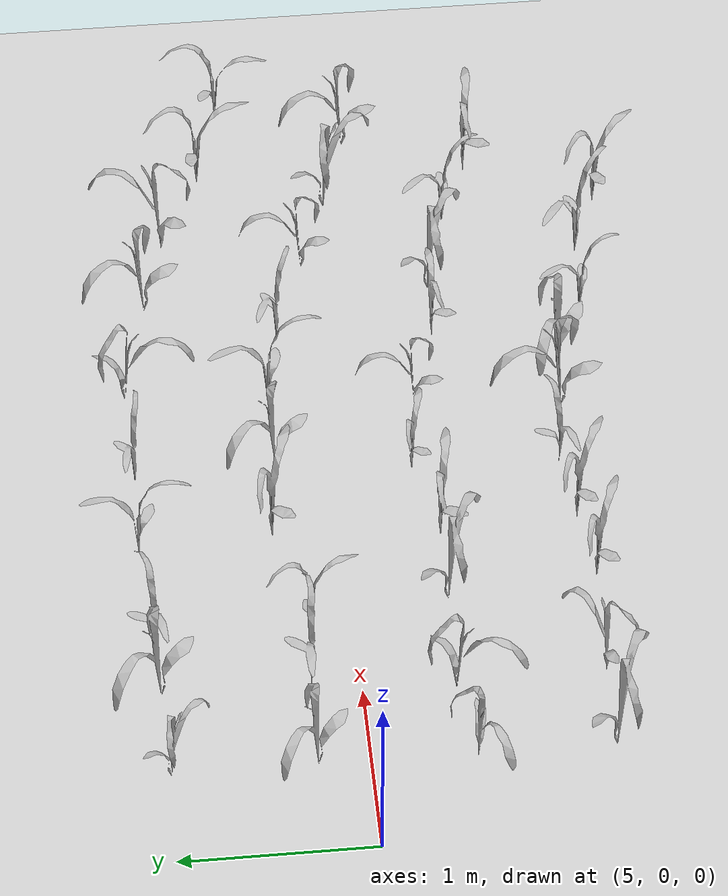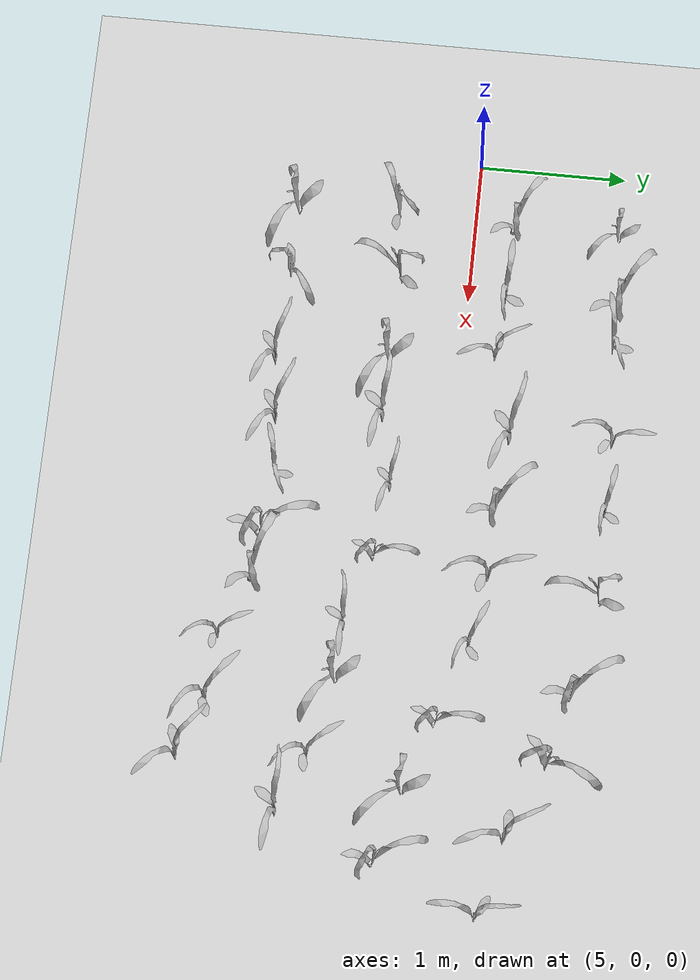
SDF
<sdf version="1.6">
 <world name="default">
  <model name="ground_plane">
   <static>1</static>
   <link name="link">
    <collision name="collision">
     <geometry><plane><normal>0 0 1</normal><size>100 100</size></plane></geometry>
     <surface>
      <contact><collide_bitmask>65535</collide_bitmask></contact>
      <friction><ode><mu>100</mu><mu2>50</mu2></ode></friction>
     </surface>
    </collision>
    <visual name="visual">
     <cast_shadows>0</cast_shadows>
     <geometry><plane><normal>0 0 1</normal><size>100 100</size></plane></geometry>
     <material>
      <script><uri>file://media/materials/scripts/gazebo.material</uri><name>Gazebo/Grey</name></script>
     </material>
    </visual>
   </link>
  </model>
  <model name="maize_01_0040">
   <pose>5.506786994470189 0.2656293258427953 0.05 0 -0 3.3924186708575643</pose>
   <link name="maize_01_0040_link">
    <inertial>
     <mass>5.0</mass>
     <inertia>
      <ixx>0.0033416667</ixx>
      <ixy>0</ixy>
      <ixz>0</ixz>
      <iyy>0.0033416667</iyy>
      <iyz>0</iyz>
      <izz>0.000016666667</izz>
     </inertia>
     <pose>0 0 0.1 0 0 0</pose>
    </inertial>
    <collision name="collision">
     <pose>0 0 0.2 0 -0 0</pose>
     <geometry><box><size>0.02 0.02 0.4</size></box></geometry>
     <surface><friction><ode><mu>10</mu><mu2>10</mu2></ode></friction></surface>
    </collision>
    <visual name="visual">
     <geometry>
      <mesh>
       <uri>model://maize_01/meshes/maize_01.dae</uri>
       <scale>0.6189998295043194 0.6189998295043194 0.6189998295043194</scale>
      </mesh>
     </geometry>
    </visual>
   </link>
  </model>
  <model name="maize_01_0041">
   <pose>5.498270994802505 0.9851649610068504 0.05 0 -0 0.06025964583949141</pose>
   <link name="maize_01_0041_link">
    <inertial>
     <mass>5.0</mass>
     <inertia>
      <ixx>0.0033416667</ixx>
      <ixy>0</ixy>
      <ixz>0</ixz>
      <iyy>0.0033416667</iyy>
      <iyz>0</iyz>
      <izz>0.000016666667</izz>
     </inertia>
     <pose>0 0 0.1 0 0 0</pose>
    </inertial>
    <collision name="collision">
     <pose>0 0 0.2 0 -0 0</pose>
     <geometry><box><size>0.02 0.02 0.4</size></box></geometry>
     <surface><friction><ode><mu>10</mu><mu2>10</mu2></ode></friction></surface>
    </collision>
    <visual name="visual">
     <geometry>
      <mesh>
       <uri>model://maize_01/meshes/maize_01.dae</uri>
       <scale>0.5000915318955779 0.5000915318955779 0.5000915318955779</scale>
      </mesh>
     </geometry>
    </visual>
   </link>
  </model>
  <model name="maize_01_0042">
   <pose>5.479430346156631 -0.5195344718169158 0.05 0 -0 4.317994222408603</pose>
   <link name="maize_01_0042_link">
    <inertial>
     <mass>5.0</mass>
     <inertia>
      <ixx>0.0033416667</ixx>
      <ixy>0</ixy>
      <ixz>0</ixz>
      <iyy>0.0033416667</iyy>
      <iyz>0</iyz>
      <izz>0.000016666667</izz>
     </inertia>
     <pose>0 0 0.1 0 0 0</pose>
    </inertial>
    <collision name="collision">
     <pose>0 0 0.2 0 -0 0</pose>
     <geometry><box><size>0.02 0.02 0.4</size></box></geometry>
     <surface><friction><ode><mu>10</mu><mu2>10</mu2></ode></friction></surface>
    </collision>
    <visual name="visual">
     <geometry>
      <mesh>
       <uri>model://maize_01/meshes/maize_01.dae</uri>
       <scale>0.5534661989044314 0.5534661989044314 0.5534661989044314</scale>
      </mesh>
     </geometry>
    </visual>
   </link>
  </model>
  <model name="maize_01_0043">
   <pose>5.494622844473126 -1.2155527549326124 0.05 0 -0 0.37965837072912256</pose>
   <link name="maize_01_0043_link">
    <inertial>
     <mass>5.0</mass>
     <inertia>
      <ixx>0.0033416667</ixx>
      <ixy>0</ixy>
      <ixz>0</ixz>
      <iyy>0.0033416667</iyy>
      <iyz>0</iyz>
      <izz>0.000016666667</izz>
     </inertia>
     <pose>0 0 0.1 0 0 0</pose>
    </inertial>
    <collision name="collision">
     <pose>0 0 0.2 0 -0 0</pose>
     <geometry><box><size>0.02 0.02 0.4</size></box></geometry>
     <surface><friction><ode><mu>10</mu><mu2>10</mu2></ode></friction></surface>
    </collision>
    <visual name="visual">
     <geometry>
      <mesh>
       <uri>model://maize_01/meshes/maize_01.dae</uri>
       <scale>0.6962699826558162 0.6962699826558162 0.6962699826558162</scale>
      </mesh>
     </geometry>
    </visual>
   </link>
  </model>
  <model name="maize_02_0044">
   <pose>6.02254541849747 0.2537100269036799 0.05 0 -0 5.268390102434163</pose>
   <link name="maize_02_0044_link">
    <inertial>
     <mass>5.0</mass>
     <inertia>
      <ixx>0.0033416667</ixx>
      <ixy>0</ixy>
      <ixz>0</ixz>
      <iyy>0.0033416667</iyy>
      <iyz>0</iyz>
      <izz>0.000016666667</izz>
     </inertia>
     <pose>0 0 0.1 0 0 0</pose>
    </inertial>
    <collision name="collision">
     <pose>0 0 0.2 0 -0 0</pose>
     <geometry><box><size>0.02 0.02 0.4</size></box></geometry>
     <surface><friction><ode><mu>10</mu><mu2>10</mu2></ode></friction></surface>
    </collision>
    <visual name="visual">
     <geometry>
      <mesh>
       <uri>model://maize_02/meshes/maize_02.dae</uri>
       <scale>0.6088828733099652 0.6088828733099652 0.6088828733099652</scale>
      </mesh>
     </geometry>
    </visual>
   </link>
  </model>
  <model name="maize_01_0045">
   <pose>6.021867439145475 1.0064633467937198 0.05 0 -0 3.332251710796354</pose>
   <link name="maize_01_0045_link">
    <inertial>
     <mass>5.0</mass>
     <inertia>
      <ixx>0.0033416667</ixx>
      <ixy>0</ixy>
      <ixz>0</ixz>
      <iyy>0.0033416667</iyy>
      <iyz>0</iyz>
      <izz>0.000016666667</izz>
     </inertia>
     <pose>0 0 0.1 0 0 0</pose>
    </inertial>
    <collision name="collision">
     <pose>0 0 0.2 0 -0 0</pose>
     <geometry><box><size>0.02 0.02 0.4</size></box></geometry>
     <surface><friction><ode><mu>10</mu><mu2>10</mu2></ode></friction></surface>
    </collision>
    <visual name="visual">
     <geometry>
      <mesh>
       <uri>model://maize_01/meshes/maize_01.dae</uri>
       <scale>0.6867273413716238 0.6867273413716238 0.6867273413716238</scale>
      </mesh>
     </geometry>
    </visual>
   </link>
  </model>
  <model name="maize_01_0046">
   <pose>5.932401994137389 -0.46470037149348664 0.05 0 -0 5.085144024606066</pose>
   <link name="maize_01_0046_link">
    <inertial>
     <mass>5.0</mass>
     <inertia>
      <ixx>0.0033416667</ixx>
      <ixy>0</ixy>
      <ixz>0</ixz>
      <iyy>0.0033416667</iyy>
      <iyz>0</iyz>
      <izz>0.000016666667</izz>
     </inertia>
     <pose>0 0 0.1 0 0 0</pose>
    </inertial>
    <collision name="collision">
     <pose>0 0 0.2 0 -0 0</pose>
     <geometry><box><size>0.02 0.02 0.4</size></box></geometry>
     <surface><friction><ode><mu>10</mu><mu2>10</mu2></ode></friction></surface>
    </collision>
    <visual name="visual">
     <geometry>
      <mesh>
       <uri>model://maize_01/meshes/maize_01.dae</uri>
       <scale>0.5899681368352446 0.5899681368352446 0.5899681368352446</scale>
      </mesh>
     </geometry>
    </visual>
   </link>
  </model>
  <model name="maize_01_0047">
   <pose>5.974389578275147 -1.2238915524115812 0.05 0 -0 1.3758996563627348</pose>
   <link name="maize_01_0047_link">
    <inertial>
     <mass>5.0</mass>
     <inertia>
      <ixx>0.0033416667</ixx>
      <ixy>0</ixy>
      <ixz>0</ixz>
      <iyy>0.0033416667</iyy>
      <iyz>0</iyz>
      <izz>0.000016666667</izz>
     </inertia>
     <pose>0 0 0.1 0 0 0</pose>
    </inertial>
    <collision name="collision">
     <pose>0 0 0.2 0 -0 0</pose>
     <geometry><box><size>0.02 0.02 0.4</size></box></geometry>
     <surface><friction><ode><mu>10</mu><mu2>10</mu2></ode></friction></surface>
    </collision>
    <visual name="visual">
     <geometry>
      <mesh>
       <uri>model://maize_01/meshes/maize_01.dae</uri>
       <scale>0.5517075941704092 0.5517075941704092 0.5517075941704092</scale>
      </mesh>
     </geometry>
    </visual>
   </link>
  </model>
  <model name="maize_02_0048">
   <pose>6.444683934957754 0.21806997869283193 0.05 0 -0 1.0231611283328046</pose>
   <link name="maize_02_0048_link">
    <inertial>
     <mass>5.0</mass>
     <inertia>
      <ixx>0.0033416667</ixx>
      <ixy>0</ixy>
      <ixz>0</ixz>
      <iyy>0.0033416667</iyy>
      <iyz>0</iyz>
      <izz>0.000016666667</izz>
     </inertia>
     <pose>0 0 0.1 0 0 0</pose>
    </inertial>
    <collision name="collision">
     <pose>0 0 0.2 0 -0 0</pose>
     <geometry><box><size>0.02 0.02 0.4</size></box></geometry>
     <surface><friction><ode><mu>10</mu><mu2>10</mu2></ode></friction></surface>
    </collision>
    <visual name="visual">
     <geometry>
      <mesh>
       <uri>model://maize_02/meshes/maize_02.dae</uri>
       <scale>0.5222971193343772 0.5222971193343772 0.5222971193343772</scale>
      </mesh>
     </geometry>
    </visual>
   </link>
  </model>
  <model name="maize_02_0049">
   <pose>6.311951254254064 1.011576644294995 0.05 0 -0 5.504198045658767</pose>
   <link name="maize_02_0049_link">
    <inertial>
     <mass>5.0</mass>
     <inertia>
      <ixx>0.0033416667</ixx>
      <ixy>0</ixy>
      <ixz>0</ixz>
      <iyy>0.0033416667</iyy>
      <iyz>0</iyz>
      <izz>0.000016666667</izz>
     </inertia>
     <pose>0 0 0.1 0 0 0</pose>
    </inertial>
    <collision name="collision">
     <pose>0 0 0.2 0 -0 0</pose>
     <geometry><box><size>0.02 0.02 0.4</size></box></geometry>
     <surface><friction><ode><mu>10</mu><mu2>10</mu2></ode></friction></surface>
    </collision>
    <visual name="visual">
     <geometry>
      <mesh>
       <uri>model://maize_02/meshes/maize_02.dae</uri>
       <scale>0.5701051856462379 0.5701051856462379 0.5701051856462379</scale>
      </mesh>
     </geometry>
    </visual>
   </link>
  </model>
  <model name="maize_01_0050">
   <pose>6.53616275845879 -0.49190842154945386 0.05 0 -0 0.33308074377836916</pose>
   <link name="maize_01_0050_link">
    <inertial>
     <mass>5.0</mass>
     <inertia>
      <ixx>0.0033416667</ixx>
      <ixy>0</ixy>
      <ixz>0</ixz>
      <iyy>0.0033416667</iyy>
      <iyz>0</iyz>
      <izz>0.000016666667</izz>
     </inertia>
     <pose>0 0 0.1 0 0 0</pose>
    </inertial>
    <collision name="collision">
     <pose>0 0 0.2 0 -0 0</pose>
     <geometry><box><size>0.02 0.02 0.4</size></box></geometry>
     <surface><friction><ode><mu>10</mu><mu2>10</mu2></ode></friction></surface>
    </collision>
    <visual name="visual">
     <geometry>
      <mesh>
       <uri>model://maize_01/meshes/maize_01.dae</uri>
       <scale>0.6685947104741558 0.6685947104741558 0.6685947104741558</scale>
      </mesh>
     </geometry>
    </visual>
   </link>
  </model>
  <model name="maize_02_0051">
   <pose>6.611361487242681 -1.2605063685053592 0.05 0 -0 1.7884036289483325</pose>
   <link name="maize_02_0051_link">
    <inertial>
     <mass>5.0</mass>
     <inertia>
      <ixx>0.0033416667</ixx>
      <ixy>0</ixy>
      <ixz>0</ixz>
      <iyy>0.0033416667</iyy>
      <iyz>0</iyz>
      <izz>0.000016666667</izz>
     </inertia>
     <pose>0 0 0.1 0 0 0</pose>
    </inertial>
    <collision name="collision">
     <pose>0 0 0.2 0 -0 0</pose>
     <geometry><box><size>0.02 0.02 0.4</size></box></geometry>
     <surface><friction><ode><mu>10</mu><mu2>10</mu2></ode></friction></surface>
    </collision>
    <visual name="visual">
     <geometry>
      <mesh>
       <uri>model://maize_02/meshes/maize_02.dae</uri>
       <scale>0.6225692680401886 0.6225692680401886 0.6225692680401886</scale>
      </mesh>
     </geometry>
    </visual>
   </link>
  </model>
  <model name="maize_02_0052">
   <pose>7.047655717057351 0.3668921904029307 0.05 0 -0 1.865239226065937</pose>
   <link name="maize_02_0052_link">
    <inertial>
     <mass>5.0</mass>
     <inertia>
      <ixx>0.0033416667</ixx>
      <ixy>0</ixy>
      <ixz>0</ixz>
      <iyy>0.0033416667</iyy>
      <iyz>0</iyz>
      <izz>0.000016666667</izz>
     </inertia>
     <pose>0 0 0.1 0 0 0</pose>
    </inertial>
    <collision name="collision">
     <pose>0 0 0.2 0 -0 0</pose>
     <geometry><box><size>0.02 0.02 0.4</size></box></geometry>
     <surface><friction><ode><mu>10</mu><mu2>10</mu2></ode></friction></surface>
    </collision>
    <visual name="visual">
     <geometry>
      <mesh>
       <uri>model://maize_02/meshes/maize_02.dae</uri>
       <scale>0.6868021087822107 0.6868021087822107 0.6868021087822107</scale>
      </mesh>
     </geometry>
    </visual>
   </link>
  </model>
  <model name="maize_02_0053">
   <pose>7.002225742621037 1.0586696913169389 0.05 0 -0 3.749618994481808</pose>
   <link name="maize_02_0053_link">
    <inertial>
     <mass>5.0</mass>
     <inertia>
      <ixx>0.0033416667</ixx>
      <ixy>0</ixy>
      <ixz>0</ixz>
      <iyy>0.0033416667</iyy>
      <iyz>0</iyz>
      <izz>0.000016666667</izz>
     </inertia>
     <pose>0 0 0.1 0 0 0</pose>
    </inertial>
    <collision name="collision">
     <pose>0 0 0.2 0 -0 0</pose>
     <geometry><box><size>0.02 0.02 0.4</size></box></geometry>
     <surface><friction><ode><mu>10</mu><mu2>10</mu2></ode></friction></surface>
    </collision>
    <visual name="visual">
     <geometry>
      <mesh>
       <uri>model://maize_02/meshes/maize_02.dae</uri>
       <scale>0.5549107990418974 0.5549107990418974 0.5549107990418974</scale>
      </mesh>
     </geometry>
    </visual>
   </link>
  </model>
  <model name="maize_02_0054">
   <pose>6.964805699102833 -0.4964306345051091 0.05 0 -0 2.0242427335745856</pose>
   <link name="maize_02_0054_link">
    <inertial>
     <mass>5.0</mass>
     <inertia>
      <ixx>0.0033416667</ixx>
      <ixy>0</ixy>
      <ixz>0</ixz>
      <iyy>0.0033416667</iyy>
      <iyz>0</iyz>
      <izz>0.000016666667</izz>
     </inertia>
     <pose>0 0 0.1 0 0 0</pose>
    </inertial>
    <collision name="collision">
     <pose>0 0 0.2 0 -0 0</pose>
     <geometry><box><size>0.02 0.02 0.4</size></box></geometry>
     <surface><friction><ode><mu>10</mu><mu2>10</mu2></ode></friction></surface>
    </collision>
    <visual name="visual">
     <geometry>
      <mesh>
       <uri>model://maize_02/meshes/maize_02.dae</uri>
       <scale>0.6621043652803483 0.6621043652803483 0.6621043652803483</scale>
      </mesh>
     </geometry>
    </visual>
   </link>
  </model>
  <model name="maize_02_0055">
   <pose>7.040403497226146 -1.2146936146891378 0.05 0 -0 1.7073671391820333</pose>
   <link name="maize_02_0055_link">
    <inertial>
     <mass>5.0</mass>
     <inertia>
      <ixx>0.0033416667</ixx>
      <ixy>0</ixy>
      <ixz>0</ixz>
      <iyy>0.0033416667</iyy>
      <iyz>0</iyz>
      <izz>0.000016666667</izz>
     </inertia>
     <pose>0 0 0.1 0 0 0</pose>
    </inertial>
    <collision name="collision">
     <pose>0 0 0.2 0 -0 0</pose>
     <geometry><box><size>0.02 0.02 0.4</size></box></geometry>
     <surface><friction><ode><mu>10</mu><mu2>10</mu2></ode></friction></surface>
    </collision>
    <visual name="visual">
     <geometry>
      <mesh>
       <uri>model://maize_02/meshes/maize_02.dae</uri>
       <scale>0.6301210235145418 0.6301210235145418 0.6301210235145418</scale>
      </mesh>
     </geometry>
    </visual>
   </link>
  </model>
  <model name="maize_01_0056">
   <pose>7.564689000184168 0.31163713333273607 0.05 0 -0 3.188919088596986</pose>
   <link name="maize_01_0056_link">
    <inertial>
     <mass>5.0</mass>
     <inertia>
      <ixx>0.0033416667</ixx>
      <ixy>0</ixy>
      <ixz>0</ixz>
      <iyy>0.0033416667</iyy>
      <iyz>0</iyz>
      <izz>0.000016666667</izz>
     </inertia>
     <pose>0 0 0.1 0 0 0</pose>
    </inertial>
    <collision name="collision">
     <pose>0 0 0.2 0 -0 0</pose>
     <geometry><box><size>0.02 0.02 0.4</size></box></geometry>
     <surface><friction><ode><mu>10</mu><mu2>10</mu2></ode></friction></surface>
    </collision>
    <visual name="visual">
     <geometry>
      <mesh>
       <uri>model://maize_01/meshes/maize_01.dae</uri>
       <scale>0.6456038164937912 0.6456038164937912 0.6456038164937912</scale>
      </mesh>
     </geometry>
    </visual>
   </link>
  </model>
  <model name="maize_02_0057">
   <pose>7.500975361317406 1.0499312067313706 0.05 0 -0 5.141058910653974</pose>
   <link name="maize_02_0057_link">
    <inertial>
     <mass>5.0</mass>
     <inertia>
      <ixx>0.0033416667</ixx>
      <ixy>0</ixy>
      <ixz>0</ixz>
      <iyy>0.0033416667</iyy>
      <iyz>0</iyz>
      <izz>0.000016666667</izz>
     </inertia>
     <pose>0 0 0.1 0 0 0</pose>
    </inertial>
    <collision name="collision">
     <pose>0 0 0.2 0 -0 0</pose>
     <geometry><box><size>0.02 0.02 0.4</size></box></geometry>
     <surface><friction><ode><mu>10</mu><mu2>10</mu2></ode></friction></surface>
    </collision>
    <visual name="visual">
     <geometry>
      <mesh>
       <uri>model://maize_02/meshes/maize_02.dae</uri>
       <scale>0.5251215965367916 0.5251215965367916 0.5251215965367916</scale>
      </mesh>
     </geometry>
    </visual>
   </link>
  </model>
  <model name="maize_02_0058">
   <pose>7.455712312881643 -0.3977243474003614 0.05 0 -0 1.9446974029243165</pose>
   <link name="maize_02_0058_link">
    <inertial>
     <mass>5.0</mass>
     <inertia>
      <ixx>0.0033416667</ixx>
      <ixy>0</ixy>
      <ixz>0</ixz>
      <iyy>0.0033416667</iyy>
      <iyz>0</iyz>
      <izz>0.000016666667</izz>
     </inertia>
     <pose>0 0 0.1 0 0 0</pose>
    </inertial>
    <collision name="collision">
     <pose>0 0 0.2 0 -0 0</pose>
     <geometry><box><size>0.02 0.02 0.4</size></box></geometry>
     <surface><friction><ode><mu>10</mu><mu2>10</mu2></ode></friction></surface>
    </collision>
    <visual name="visual">
     <geometry>
      <mesh>
       <uri>model://maize_02/meshes/maize_02.dae</uri>
       <scale>0.5105369562286869 0.5105369562286869 0.5105369562286869</scale>
      </mesh>
     </geometry>
    </visual>
   </link>
  </model>
  <model name="maize_02_0059">
   <pose>7.426569444041071 -1.168700941892246 0.05 0 -0 5.573964091727801</pose>
   <link name="maize_02_0059_link">
    <inertial>
     <mass>5.0</mass>
     <inertia>
      <ixx>0.0033416667</ixx>
      <ixy>0</ixy>
      <ixz>0</ixz>
      <iyy>0.0033416667</iyy>
      <iyz>0</iyz>
      <izz>0.000016666667</izz>
     </inertia>
     <pose>0 0 0.1 0 0 0</pose>
    </inertial>
    <collision name="collision">
     <pose>0 0 0.2 0 -0 0</pose>
     <geometry><box><size>0.02 0.02 0.4</size></box></geometry>
     <surface><friction><ode><mu>10</mu><mu2>10</mu2></ode></friction></surface>
    </collision>
    <visual name="visual">
     <geometry>
      <mesh>
       <uri>model://maize_02/meshes/maize_02.dae</uri>
       <scale>0.5241416613408271 0.5241416613408271 0.5241416613408271</scale>
      </mesh>
     </geometry>
    </visual>
   </link>
  </model>
  <model name="maize_02_0060">
   <pose>8.024216891501732 0.3117248870357677 0.05 0 -0 4.009393099995125</pose>
   <link name="maize_02_0060_link">
    <inertial>
     <mass>5.0</mass>
     <inertia>
      <ixx>0.0033416667</ixx>
      <ixy>0</ixy>
      <ixz>0</ixz>
      <iyy>0.0033416667</iyy>
      <iyz>0</iyz>
      <izz>0.000016666667</izz>
     </inertia>
     <pose>0 0 0.1 0 0 0</pose>
    </inertial>
    <collision name="collision">
     <pose>0 0 0.2 0 -0 0</pose>
     <geometry><box><size>0.02 0.02 0.4</size></box></geometry>
     <surface><friction><ode><mu>10</mu><mu2>10</mu2></ode></friction></surface>
    </collision>
    <visual name="visual">
     <geometry>
      <mesh>
       <uri>model://maize_02/meshes/maize_02.dae</uri>
       <scale>0.619068009571125 0.619068009571125 0.619068009571125</scale>
      </mesh>
     </geometry>
    </visual>
   </link>
  </model>
  <model name="maize_01_0061">
   <pose>8.114442692044541 1.066516804768334 0.05 0 -0 5.434871950774438</pose>
   <link name="maize_01_0061_link">
    <inertial>
     <mass>5.0</mass>
     <inertia>
      <ixx>0.0033416667</ixx>
      <ixy>0</ixy>
      <ixz>0</ixz>
      <iyy>0.0033416667</iyy>
      <iyz>0</iyz>
      <izz>0.000016666667</izz>
     </inertia>
     <pose>0 0 0.1 0 0 0</pose>
    </inertial>
    <collision name="collision">
     <pose>0 0 0.2 0 -0 0</pose>
     <geometry><box><size>0.02 0.02 0.4</size></box></geometry>
     <surface><friction><ode><mu>10</mu><mu2>10</mu2></ode></friction></surface>
    </collision>
    <visual name="visual">
     <geometry>
      <mesh>
       <uri>model://maize_01/meshes/maize_01.dae</uri>
       <scale>0.6098479446709089 0.6098479446709089 0.6098479446709089</scale>
      </mesh>
     </geometry>
    </visual>
   </link>
  </model>
  <model name="maize_01_0062">
   <pose>7.9526681246436945 -0.4627865803892593 0.05 0 -0 2.3683497602784884</pose>
   <link name="maize_01_0062_link">
    <inertial>
     <mass>5.0</mass>
     <inertia>
      <ixx>0.0033416667</ixx>
      <ixy>0</ixy>
      <ixz>0</ixz>
      <iyy>0.0033416667</iyy>
      <iyz>0</iyz>
      <izz>0.000016666667</izz>
     </inertia>
     <pose>0 0 0.1 0 0 0</pose>
    </inertial>
    <collision name="collision">
     <pose>0 0 0.2 0 -0 0</pose>
     <geometry><box><size>0.02 0.02 0.4</size></box></geometry>
     <surface><friction><ode><mu>10</mu><mu2>10</mu2></ode></friction></surface>
    </collision>
    <visual name="visual">
     <geometry>
      <mesh>
       <uri>model://maize_01/meshes/maize_01.dae</uri>
       <scale>0.5153146976363424 0.5153146976363424 0.5153146976363424</scale>
      </mesh>
     </geometry>
    </visual>
   </link>
  </model>
  <model name="maize_01_0063">
   <pose>7.864211292835685 -1.234221053422453 0.05 0 -0 2.7041383097239122</pose>
   <link name="maize_01_0063_link">
    <inertial>
     <mass>5.0</mass>
     <inertia>
      <ixx>0.0033416667</ixx>
      <ixy>0</ixy>
      <ixz>0</ixz>
      <iyy>0.0033416667</iyy>
      <iyz>0</iyz>
      <izz>0.000016666667</izz>
     </inertia>
     <pose>0 0 0.1 0 0 0</pose>
    </inertial>
    <collision name="collision">
     <pose>0 0 0.2 0 -0 0</pose>
     <geometry><box><size>0.02 0.02 0.4</size></box></geometry>
     <surface><friction><ode><mu>10</mu><mu2>10</mu2></ode></friction></surface>
    </collision>
    <visual name="visual">
     <geometry>
      <mesh>
       <uri>model://maize_01/meshes/maize_01.dae</uri>
       <scale>0.6941420537995995 0.6941420537995995 0.6941420537995995</scale>
      </mesh>
     </geometry>
    </visual>
   </link>
  </model>
  <model name="maize_02_0064">
   <pose>8.515626580710169 0.22752573464025544 0.05 0 -0 4.894806823461959</pose>
   <link name="maize_02_0064_link">
    <inertial>
     <mass>5.0</mass>
     <inertia>
      <ixx>0.0033416667</ixx>
      <ixy>0</ixy>
      <ixz>0</ixz>
      <iyy>0.0033416667</iyy>
      <iyz>0</iyz>
      <izz>0.000016666667</izz>
     </inertia>
     <pose>0 0 0.1 0 0 0</pose>
    </inertial>
    <collision name="collision">
     <pose>0 0 0.2 0 -0 0</pose>
     <geometry><box><size>0.02 0.02 0.4</size></box></geometry>
     <surface><friction><ode><mu>10</mu><mu2>10</mu2></ode></friction></surface>
    </collision>
    <visual name="visual">
     <geometry>
      <mesh>
       <uri>model://maize_02/meshes/maize_02.dae</uri>
       <scale>0.5342948187897263 0.5342948187897263 0.5342948187897263</scale>
      </mesh>
     </geometry>
    </visual>
   </link>
  </model>
  <model name="maize_01_0065">
   <pose>8.797978304867467 0.9278365016822235 0.05 0 -0 2.969681985634368</pose>
   <link name="maize_01_0065_link">
    <inertial>
     <mass>5.0</mass>
     <inertia>
      <ixx>0.0033416667</ixx>
      <ixy>0</ixy>
      <ixz>0</ixz>
      <iyy>0.0033416667</iyy>
      <iyz>0</iyz>
      <izz>0.000016666667</izz>
     </inertia>
     <pose>0 0 0.1 0 0 0</pose>
    </inertial>
    <collision name="collision">
     <pose>0 0 0.2 0 -0 0</pose>
     <geometry><box><size>0.02 0.02 0.4</size></box></geometry>
     <surface><friction><ode><mu>10</mu><mu2>10</mu2></ode></friction></surface>
    </collision>
    <visual name="visual">
     <geometry>
      <mesh>
       <uri>model://maize_01/meshes/maize_01.dae</uri>
       <scale>0.6607500949548717 0.6607500949548717 0.6607500949548717</scale>
      </mesh>
     </geometry>
    </visual>
   </link>
  </model>
  <model name="maize_02_0066">
   <pose>8.450692312332725 -0.6085112684993969 0.05 0 -0 2.1949939465360484</pose>
   <link name="maize_02_0066_link">
    <inertial>
     <mass>5.0</mass>
     <inertia>
      <ixx>0.0033416667</ixx>
      <ixy>0</ixy>
      <ixz>0</ixz>
      <iyy>0.0033416667</iyy>
      <iyz>0</iyz>
      <izz>0.000016666667</izz>
     </inertia>
     <pose>0 0 0.1 0 0 0</pose>
    </inertial>
    <collision name="collision">
     <pose>0 0 0.2 0 -0 0</pose>
     <geometry><box><size>0.02 0.02 0.4</size></box></geometry>
     <surface><friction><ode><mu>10</mu><mu2>10</mu2></ode></friction></surface>
    </collision>
    <visual name="visual">
     <geometry>
      <mesh>
       <uri>model://maize_02/meshes/maize_02.dae</uri>
       <scale>0.5554749668529012 0.5554749668529012 0.5554749668529012</scale>
      </mesh>
     </geometry>
    </visual>
   </link>
  </model>
  <model name="maize_01_0067">
   <pose>8.173336388786346 -1.2505987696132226 0.05 0 -0 3.574246117174517</pose>
   <link name="maize_01_0067_link">
    <inertial>
     <mass>5.0</mass>
     <inertia>
      <ixx>0.0033416667</ixx>
      <ixy>0</ixy>
      <ixz>0</ixz>
      <iyy>0.0033416667</iyy>
      <iyz>0</iyz>
      <izz>0.000016666667</izz>
     </inertia>
     <pose>0 0 0.1 0 0 0</pose>
    </inertial>
    <collision name="collision">
     <pose>0 0 0.2 0 -0 0</pose>
     <geometry><box><size>0.02 0.02 0.4</size></box></geometry>
     <surface><friction><ode><mu>10</mu><mu2>10</mu2></ode></friction></surface>
    </collision>
    <visual name="visual">
     <geometry>
      <mesh>
       <uri>model://maize_01/meshes/maize_01.dae</uri>
       <scale>0.6953719579960579 0.6953719579960579 0.6953719579960579</scale>
      </mesh>
     </geometry>
    </visual>
   </link>
  </model>
  <model name="maize_01_0068">
   <pose>9.064322137998845 0.04918211563022272 0.05 0 -0 2.391948066433086</pose>
   <link name="maize_01_0068_link">
    <inertial>
     <mass>5.0</mass>
     <inertia>
      <ixx>0.0033416667</ixx>
      <ixy>0</ixy>
      <ixz>0</ixz>
      <iyy>0.0033416667</iyy>
      <iyz>0</iyz>
      <izz>0.000016666667</izz>
     </inertia>
     <pose>0 0 0.1 0 0 0</pose>
    </inertial>
    <collision name="collision">
     <pose>0 0 0.2 0 -0 0</pose>
     <geometry><box><size>0.02 0.02 0.4</size></box></geometry>
     <surface><friction><ode><mu>10</mu><mu2>10</mu2></ode></friction></surface>
    </collision>
    <visual name="visual">
     <geometry>
      <mesh>
       <uri>model://maize_01/meshes/maize_01.dae</uri>
       <scale>0.5526342822145159 0.5526342822145159 0.5526342822145159</scale>
      </mesh>
     </geometry>
    </visual>
   </link>
  </model>
  <model name="maize_01_0069">
   <pose>9.284778621557829 0.8028652759528367 0.05 0 -0 1.9203864981711538</pose>
   <link name="maize_01_0069_link">
    <inertial>
     <mass>5.0</mass>
     <inertia>
      <ixx>0.0033416667</ixx>
      <ixy>0</ixy>
      <ixz>0</ixz>
      <iyy>0.0033416667</iyy>
      <iyz>0</iyz>
      <izz>0.000016666667</izz>
     </inertia>
     <pose>0 0 0.1 0 0 0</pose>
    </inertial>
    <collision name="collision">
     <pose>0 0 0.2 0 -0 0</pose>
     <geometry><box><size>0.02 0.02 0.4</size></box></geometry>
     <surface><friction><ode><mu>10</mu><mu2>10</mu2></ode></friction></surface>
    </collision>
    <visual name="visual">
     <geometry>
      <mesh>
       <uri>model://maize_01/meshes/maize_01.dae</uri>
       <scale>0.6725737585832566 0.6725737585832566 0.6725737585832566</scale>
      </mesh>
     </geometry>
    </visual>
   </link>
  </model>
  <model name="maize_01_0070">
   <pose>8.823245183632176 -0.6279596208129431 0.05 0 -0 0.29912851480931085</pose>
   <link name="maize_01_0070_link">
    <inertial>
     <mass>5.0</mass>
     <inertia>
      <ixx>0.0033416667</ixx>
      <ixy>0</ixy>
      <ixz>0</ixz>
      <iyy>0.0033416667</iyy>
      <iyz>0</iyz>
      <izz>0.000016666667</izz>
     </inertia>
     <pose>0 0 0.1 0 0 0</pose>
    </inertial>
    <collision name="collision">
     <pose>0 0 0.2 0 -0 0</pose>
     <geometry><box><size>0.02 0.02 0.4</size></box></geometry>
     <surface><friction><ode><mu>10</mu><mu2>10</mu2></ode></friction></surface>
    </collision>
    <visual name="visual">
     <geometry>
      <mesh>
       <uri>model://maize_01/meshes/maize_01.dae</uri>
       <scale>0.6733374584695239 0.6733374584695239 0.6733374584695239</scale>
      </mesh>
     </geometry>
    </visual>
   </link>
  </model>
  <model name="maize_02_0071">
   <pose>8.5879852009807 -1.4293825635606494 0.05 0 -0 4.19518192700643</pose>
   <link name="maize_02_0071_link">
    <inertial>
     <mass>5.0</mass>
     <inertia>
      <ixx>0.0033416667</ixx>
      <ixy>0</ixy>
      <ixz>0</ixz>
      <iyy>0.0033416667</iyy>
      <iyz>0</iyz>
      <izz>0.000016666667</izz>
     </inertia>
     <pose>0 0 0.1 0 0 0</pose>
    </inertial>
    <collision name="collision">
     <pose>0 0 0.2 0 -0 0</pose>
     <geometry><box><size>0.02 0.02 0.4</size></box></geometry>
     <surface><friction><ode><mu>10</mu><mu2>10</mu2></ode></friction></surface>
    </collision>
    <visual name="visual">
     <geometry>
      <mesh>
       <uri>model://maize_02/meshes/maize_02.dae</uri>
       <scale>0.5053249611351085 0.5053249611351085 0.5053249611351085</scale>
      </mesh>
     </geometry>
    </visual>
   </link>
  </model>
  <model name="maize_01_0072">
   <pose>9.539749666692526 -0.11887906800545525 0.05 0 -0 0.03854990340783455</pose>
   <link name="maize_01_0072_link">
    <inertial>
     <mass>5.0</mass>
     <inertia>
      <ixx>0.0033416667</ixx>
      <ixy>0</ixy>
      <ixz>0</ixz>
      <iyy>0.0033416667</iyy>
      <iyz>0</iyz>
      <izz>0.000016666667</izz>
     </inertia>
     <pose>0 0 0.1 0 0 0</pose>
    </inertial>
    <collision name="collision">
     <pose>0 0 0.2 0 -0 0</pose>
     <geometry><box><size>0.02 0.02 0.4</size></box></geometry>
     <surface><friction><ode><mu>10</mu><mu2>10</mu2></ode></friction></surface>
    </collision>
    <visual name="visual">
     <geometry>
      <mesh>
       <uri>model://maize_01/meshes/maize_01.dae</uri>
       <scale>0.6706768901069814 0.6706768901069814 0.6706768901069814</scale>
      </mesh>
     </geometry>
    </visual>
   </link>
  </model>
  <model name="maize_02_0073">
   <pose>9.803765253262771 0.5698835192423604 0.05 0 -0 1.0283811105428369</pose>
   <link name="maize_02_0073_link">
    <inertial>
     <mass>5.0</mass>
     <inertia>
      <ixx>0.0033416667</ixx>
      <ixy>0</ixy>
      <ixz>0</ixz>
      <iyy>0.0033416667</iyy>
      <iyz>0</iyz>
      <izz>0.000016666667</izz>
     </inertia>
     <pose>0 0 0.1 0 0 0</pose>
    </inertial>
    <collision name="collision">
     <pose>0 0 0.2 0 -0 0</pose>
     <geometry><box><size>0.02 0.02 0.4</size></box></geometry>
     <surface><friction><ode><mu>10</mu><mu2>10</mu2></ode></friction></surface>
    </collision>
    <visual name="visual">
     <geometry>
      <mesh>
       <uri>model://maize_02/meshes/maize_02.dae</uri>
       <scale>0.6554638636063058 0.6554638636063058 0.6554638636063058</scale>
      </mesh>
     </geometry>
    </visual>
   </link>
  </model>
  <model name="maize_02_0074">
   <pose>9.353535710233986 -0.7598061912881837 0.05 0 -0 4.389452148633641</pose>
   <link name="maize_02_0074_link">
    <inertial>
     <mass>5.0</mass>
     <inertia>
      <ixx>0.0033416667</ixx>
      <ixy>0</ixy>
      <ixz>0</ixz>
      <iyy>0.0033416667</iyy>
      <iyz>0</iyz>
      <izz>0.000016666667</izz>
     </inertia>
     <pose>0 0 0.1 0 0 0</pose>
    </inertial>
    <collision name="collision">
     <pose>0 0 0.2 0 -0 0</pose>
     <geometry><box><size>0.02 0.02 0.4</size></box></geometry>
     <surface><friction><ode><mu>10</mu><mu2>10</mu2></ode></friction></surface>
    </collision>
    <visual name="visual">
     <geometry>
      <mesh>
       <uri>model://maize_02/meshes/maize_02.dae</uri>
       <scale>0.5668389910888513 0.5668389910888513 0.5668389910888513</scale>
      </mesh>
     </geometry>
    </visual>
   </link>
  </model>
  <model name="maize_02_0075">
   <pose>9.040611113136952 -1.4630818077321261 0.05 0 -0 4.613191125947475</pose>
   <link name="maize_02_0075_link">
    <inertial>
     <mass>5.0</mass>
     <inertia>
      <ixx>0.0033416667</ixx>
      <ixy>0</ixy>
      <ixz>0</ixz>
      <iyy>0.0033416667</iyy>
      <iyz>0</iyz>
      <izz>0.000016666667</izz>
     </inertia>
     <pose>0 0 0.1 0 0 0</pose>
    </inertial>
    <collision name="collision">
     <pose>0 0 0.2 0 -0 0</pose>
     <geometry><box><size>0.02 0.02 0.4</size></box></geometry>
     <surface><friction><ode><mu>10</mu><mu2>10</mu2></ode></friction></surface>
    </collision>
    <visual name="visual">
     <geometry>
      <mesh>
       <uri>model://maize_02/meshes/maize_02.dae</uri>
       <scale>0.6459750970425208 0.6459750970425208 0.6459750970425208</scale>
      </mesh>
     </geometry>
    </visual>
   </link>
  </model>
  <model name="maize_01_0076">
   <pose>10.044092122502189 -0.2632746164873884 0.05 0 -0 2.7386430331490557</pose>
   <link name="maize_01_0076_link">
    <inertial>
     <mass>5.0</mass>
     <inertia>
      <ixx>0.0033416667</ixx>
      <ixy>0</ixy>
      <ixz>0</ixz>
      <iyy>0.0033416667</iyy>
      <iyz>0</iyz>
      <izz>0.000016666667</izz>
     </inertia>
     <pose>0 0 0.1 0 0 0</pose>
    </inertial>
    <collision name="collision">
     <pose>0 0 0.2 0 -0 0</pose>
     <geometry><box><size>0.02 0.02 0.4</size></box></geometry>
     <surface><friction><ode><mu>10</mu><mu2>10</mu2></ode></friction></surface>
    </collision>
    <visual name="visual">
     <geometry>
      <mesh>
       <uri>model://maize_01/meshes/maize_01.dae</uri>
       <scale>0.6355556442357604 0.6355556442357604 0.6355556442357604</scale>
      </mesh>
     </geometry>
    </visual>
   </link>
  </model>
  <model name="maize_02_0077">
   <pose>10.337228977038055 0.4319256875557494 0.05 0 -0 0.6007237753716825</pose>
   <link name="maize_02_0077_link">
    <inertial>
     <mass>5.0</mass>
     <inertia>
      <ixx>0.0033416667</ixx>
      <ixy>0</ixy>
      <ixz>0</ixz>
      <iyy>0.0033416667</iyy>
      <iyz>0</iyz>
      <izz>0.000016666667</izz>
     </inertia>
     <pose>0 0 0.1 0 0 0</pose>
    </inertial>
    <collision name="collision">
     <pose>0 0 0.2 0 -0 0</pose>
     <geometry><box><size>0.02 0.02 0.4</size></box></geometry>
     <surface><friction><ode><mu>10</mu><mu2>10</mu2></ode></friction></surface>
    </collision>
    <visual name="visual">
     <geometry>
      <mesh>
       <uri>model://maize_02/meshes/maize_02.dae</uri>
       <scale>0.5917437405580998 0.5917437405580998 0.5917437405580998</scale>
      </mesh>
     </geometry>
    </visual>
   </link>
  </model>
  <model name="maize_02_0078">
   <pose>9.761974548735223 -0.9249794581774133 0.05 0 -0 2.0715595021694044</pose>
   <link name="maize_02_0078_link">
    <inertial>
     <mass>5.0</mass>
     <inertia>
      <ixx>0.0033416667</ixx>
      <ixy>0</ixy>
      <ixz>0</ixz>
      <iyy>0.0033416667</iyy>
      <iyz>0</iyz>
      <izz>0.000016666667</izz>
     </inertia>
     <pose>0 0 0.1 0 0 0</pose>
    </inertial>
    <collision name="collision">
     <pose>0 0 0.2 0 -0 0</pose>
     <geometry><box><size>0.02 0.02 0.4</size></box></geometry>
     <surface><friction><ode><mu>10</mu><mu2>10</mu2></ode></friction></surface>
    </collision>
    <visual name="visual">
     <geometry>
      <mesh>
       <uri>model://maize_02/meshes/maize_02.dae</uri>
       <scale>0.6705365306415599 0.6705365306415599 0.6705365306415599</scale>
      </mesh>
     </geometry>
    </visual>
   </link>
  </model>
  <model name="maize_02_0079">
   <pose>9.442043347097504 -1.614908675052381 0.05 0 -0 1.4158075379960218</pose>
   <link name="maize_02_0079_link">
    <inertial>
     <mass>5.0</mass>
     <inertia>
      <ixx>0.0033416667</ixx>
      <ixy>0</ixy>
      <ixz>0</ixz>
      <iyy>0.0033416667</iyy>
      <iyz>0</iyz>
      <izz>0.000016666667</izz>
     </inertia>
     <pose>0 0 0.1 0 0 0</pose>
    </inertial>
    <collision name="collision">
     <pose>0 0 0.2 0 -0 0</pose>
     <geometry><box><size>0.02 0.02 0.4</size></box></geometry>
     <surface><friction><ode><mu>10</mu><mu2>10</mu2></ode></friction></surface>
    </collision>
    <visual name="visual">
     <geometry>
      <mesh>
       <uri>model://maize_02/meshes/maize_02.dae</uri>
       <scale>0.647773181821295 0.647773181821295 0.647773181821295</scale>
      </mesh>
     </geometry>
    </visual>
   </link>
  </model>
 </world>
</sdf>
